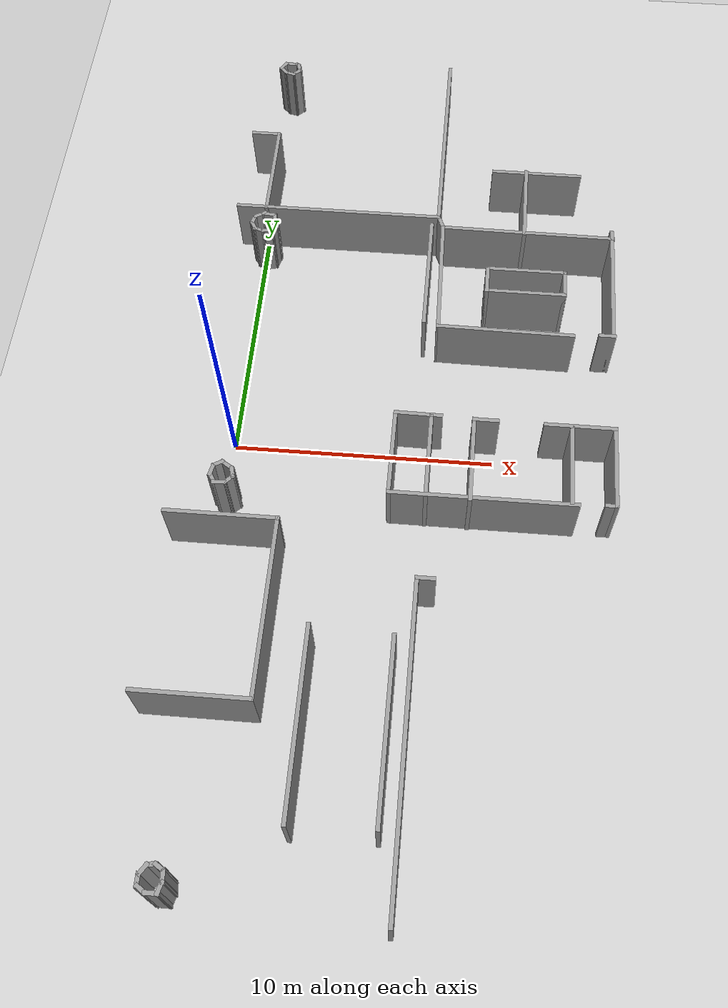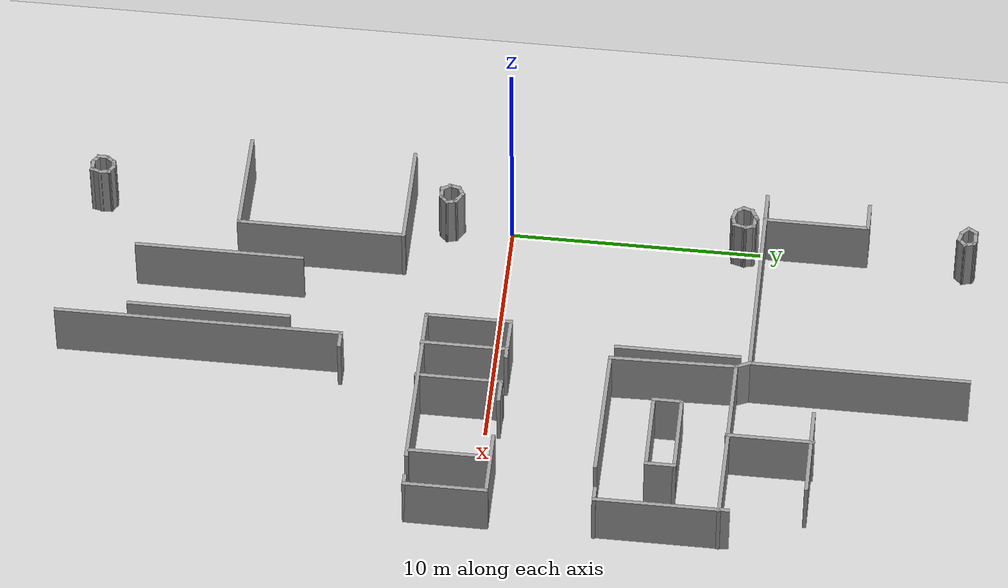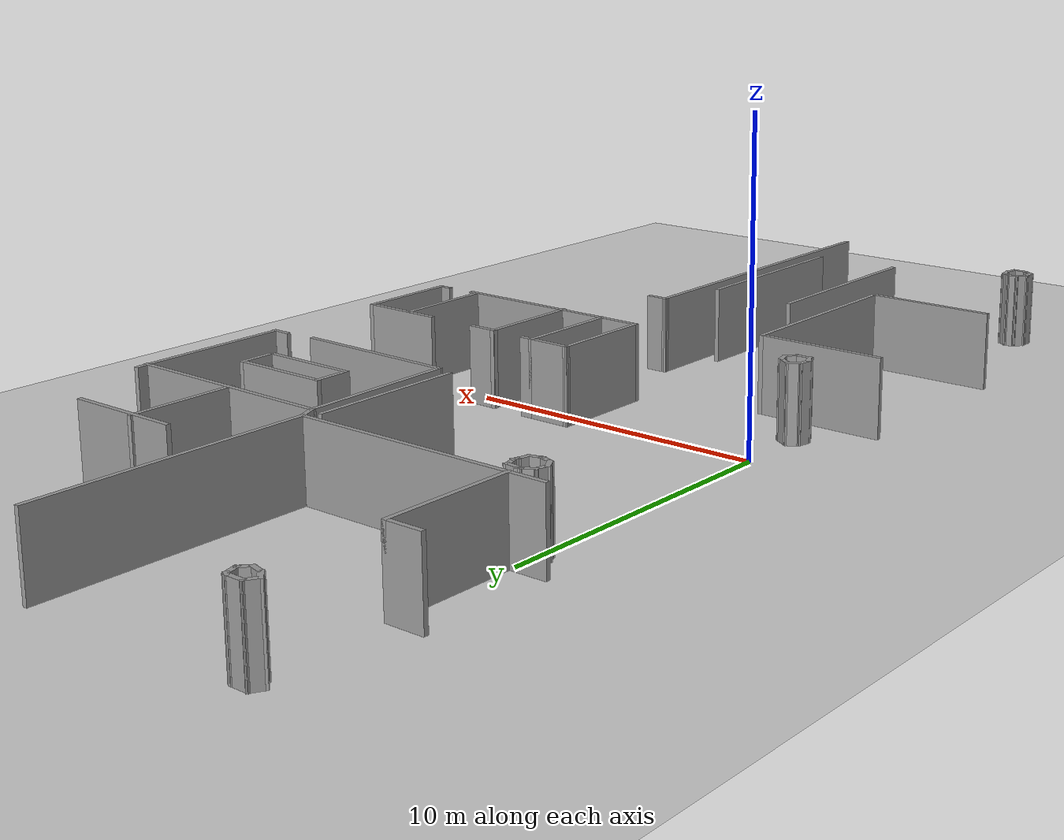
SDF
<sdf version="1.6">
 <world name="default">
  <model name="ground_plane">
   <static>1</static>
   <link name="link">
    <collision name="collision">
     <geometry><plane><normal>0 0 1</normal><size>100 100</size></plane></geometry>
     <surface>
      <contact><collide_bitmask>65535</collide_bitmask></contact>
      <friction><ode><mu>100</mu><mu2>50</mu2></ode></friction>
     </surface>
    </collision>
    <visual name="visual">
     <cast_shadows>0</cast_shadows>
     <geometry><plane><normal>0 0 1</normal><size>100 100</size></plane></geometry>
     <material>
      <script><uri>file://media/materials/scripts/gazebo.material</uri><name>Gazebo/Grey</name></script>
     </material>
    </visual>
   </link>
  </model>
  <model name="L8_1st">
   <pose>-0.728485 -0.360932 0 0 -0 0</pose>
   <link name="Wall_12">
    <collision name="Wall_12_Collision">
     <geometry><box><size>1.25 0.15 2.5</size></box></geometry>
     <pose>0 0 1.25 0 -0 0</pose>
    </collision>
    <visual name="Wall_12_Visual">
     <pose>0 0 1.25 0 -0 0</pose>
     <geometry><box><size>1.25 0.15 2.5</size></box></geometry>
     <material>
      <script><uri>file://media/materials/scripts/gazebo.material</uri><name>Gazebo/Grey</name></script>
      <ambient>1 1 1 1</ambient>
     </material>
     <meta><layer>0</layer></meta>
    </visual>
    <pose>0.254276 14.5952 0 0 -0 0</pose>
   </link>
   <link name="Wall_13">
    <collision name="Wall_13_Collision">
     <geometry><box><size>4.25 0.15 2.5</size></box></geometry>
     <pose>0 0 1.25 0 -0 0</pose>
    </collision>
    <visual name="Wall_13_Visual">
     <pose>0 0 1.25 0 -0 0</pose>
     <geometry><box><size>4.25 0.15 2.5</size></box></geometry>
     <material>
      <script><uri>file://media/materials/scripts/gazebo.material</uri><name>Gazebo/Grey</name></script>
      <ambient>1 1 1 1</ambient>
     </material>
     <meta><layer>0</layer></meta>
    </visual>
    <pose>0.804276 12.5452 0 0 -0 -1.5708</pose>
   </link>
   <link name="Wall_197">
    <collision name="Wall_197_Collision">
     <geometry><box><size>0.5 0.15 2.5</size></box></geometry>
     <pose>0 0 1.25 0 -0 0</pose>
    </collision>
    <visual name="Wall_197_Visual">
     <pose>0 0 1.25 0 -0 0</pose>
     <geometry><box><size>0.5 0.15 2.5</size></box></geometry>
     <material>
      <script><uri>file://media/materials/scripts/gazebo.material</uri><name>Gazebo/Grey</name></script>
      <ambient>1 1 1 1</ambient>
     </material>
     <meta><layer>0</layer></meta>
    </visual>
    <pose>0.650824 -1.70718 0 0 -0 -2.61799</pose>
   </link>
   <link name="Wall_198">
    <collision name="Wall_198_Collision">
     <geometry><box><size>0.528757 0.15 2.5</size></box></geometry>
     <pose>0 0 1.25 0 -0 0</pose>
    </collision>
    <visual name="Wall_198_Visual">
     <pose>0 0 1.25 0 -0 0</pose>
     <geometry><box><size>0.528757 0.15 2.5</size></box></geometry>
     <material>
      <script><uri>file://media/materials/scripts/gazebo.material</uri><name>Gazebo/Grey</name></script>
      <ambient>1 1 1 1</ambient>
     </material>
     <meta><layer>0</layer></meta>
    </visual>
    <pose>0.459042 -1.97974 0 0 -0 -1.78484</pose>
   </link>
   <link name="Wall_199">
    <collision name="Wall_199_Collision">
     <geometry><box><size>0.5 0.15 2.5</size></box></geometry>
     <pose>0 0 1.25 0 -0 0</pose>
    </collision>
    <visual name="Wall_199_Visual">
     <pose>0 0 1.25 0 -0 0</pose>
     <geometry><box><size>0.5 0.15 2.5</size></box></geometry>
     <material>
      <script><uri>file://media/materials/scripts/gazebo.material</uri><name>Gazebo/Grey</name></script>
      <ambient>1 1 1 1</ambient>
     </material>
     <meta><layer>0</layer></meta>
    </visual>
    <pose>0.526429 -2.31635 0 0 -0 -1.0472</pose>
   </link>
   <link name="Wall_200">
    <collision name="Wall_200_Collision">
     <geometry><box><size>0.580924 0.15 2.5</size></box></geometry>
     <pose>0 0 1.25 0 -0 0</pose>
    </collision>
    <visual name="Wall_200_Visual">
     <pose>0 0 1.25 0 -0 0</pose>
     <geometry><box><size>0.580924 0.15 2.5</size></box></geometry>
     <material>
      <script><uri>file://media/materials/scripts/gazebo.material</uri><name>Gazebo/Grey</name></script>
      <ambient>1 1 1 1</ambient>
     </material>
     <meta><layer>0</layer></meta>
    </visual>
    <pose>0.809042 -2.45785 0 0 -0 0.046692</pose>
   </link>
   <link name="Wall_201">
    <collision name="Wall_201_Collision">
     <geometry><box><size>0.5 0.15 2.5</size></box></geometry>
     <pose>0 0 1.25 0 -0 0</pose>
    </collision>
    <visual name="Wall_201_Visual">
     <pose>0 0 1.25 0 -0 0</pose>
     <geometry><box><size>0.5 0.15 2.5</size></box></geometry>
     <material>
      <script><uri>file://media/materials/scripts/gazebo.material</uri><name>Gazebo/Grey</name></script>
      <ambient>1 1 1 1</ambient>
     </material>
     <meta><layer>0</layer></meta>
    </visual>
    <pose>1.14801 -2.32405 0 0 -0 0.785398</pose>
   </link>
   <link name="Wall_202">
    <collision name="Wall_202_Collision">
     <geometry><box><size>0.5 0.15 2.5</size></box></geometry>
     <pose>0 0 1.25 0 -0 0</pose>
    </collision>
    <visual name="Wall_202_Visual">
     <pose>0 0 1.25 0 -0 0</pose>
     <geometry><box><size>0.5 0.15 2.5</size></box></geometry>
     <material>
      <script><uri>file://media/materials/scripts/gazebo.material</uri><name>Gazebo/Grey</name></script>
      <ambient>1 1 1 1</ambient>
     </material>
     <meta><layer>0</layer></meta>
    </visual>
    <pose>1.22646 -2.03127 0 0 -0 1.8326</pose>
   </link>
   <link name="Wall_203">
    <collision name="Wall_203_Collision">
     <geometry><box><size>0.599792 0.15 2.5</size></box></geometry>
     <pose>0 0 1.25 0 -0 0</pose>
    </collision>
    <visual name="Wall_203_Visual">
     <pose>0 0 1.25 0 -0 0</pose>
     <geometry><box><size>0.599792 0.15 2.5</size></box></geometry>
     <material>
      <script><uri>file://media/materials/scripts/gazebo.material</uri><name>Gazebo/Grey</name></script>
      <ambient>1 1 1 1</ambient>
     </material>
     <meta><layer>0</layer></meta>
    </visual>
    <pose>0.991774 -1.74096 0 0 -0 2.57205</pose>
   </link>
   <link name="Wall_223">
    <collision name="Wall_223_Collision">
     <geometry><box><size>0.494428 0.15 2.5</size></box></geometry>
     <pose>0 0 1.25 0 -0 0</pose>
    </collision>
    <visual name="Wall_223_Visual">
     <pose>0 0 1.25 0 -0 0</pose>
     <geometry><box><size>0.494428 0.15 2.5</size></box></geometry>
     <material>
      <script><uri>file://media/materials/scripts/gazebo.material</uri><name>Gazebo/Grey</name></script>
      <ambient>1 1 1 1</ambient>
     </material>
     <meta><layer>0</layer></meta>
    </visual>
    <pose>0.541837 -15.8586 0 0 -0 -2.16382</pose>
   </link>
   <link name="Wall_224">
    <collision name="Wall_224_Collision">
     <geometry><box><size>0.5 0.15 2.5</size></box></geometry>
     <pose>0 0 1.25 0 -0 0</pose>
    </collision>
    <visual name="Wall_224_Visual">
     <pose>0 0 1.25 0 -0 0</pose>
     <geometry><box><size>0.5 0.15 2.5</size></box></geometry>
     <material>
      <script><uri>file://media/materials/scripts/gazebo.material</uri><name>Gazebo/Grey</name></script>
      <ambient>1 1 1 1</ambient>
     </material>
     <meta><layer>0</layer></meta>
    </visual>
    <pose>0.428102 -16.1764 0 0 -0 -1.5708</pose>
   </link>
   <link name="Wall_225">
    <collision name="Wall_225_Collision">
     <geometry><box><size>0.470184 0.15 2.5</size></box></geometry>
     <pose>0 0 1.25 0 -0 0</pose>
    </collision>
    <visual name="Wall_225_Visual">
     <pose>0 0 1.25 0 -0 0</pose>
     <geometry><box><size>0.470184 0.15 2.5</size></box></geometry>
     <material>
      <script><uri>file://media/materials/scripts/gazebo.material</uri><name>Gazebo/Grey</name></script>
      <ambient>1 1 1 1</ambient>
     </material>
     <meta><layer>0</layer></meta>
    </visual>
    <pose>0.579656 -16.4389 0 0 -0 -0.578251</pose>
   </link>
   <link name="Wall_226">
    <collision name="Wall_226_Collision">
     <geometry><box><size>0.55247 0.15 2.5</size></box></geometry>
     <pose>0 0 1.25 0 -0 0</pose>
    </collision>
    <visual name="Wall_226_Visual">
     <pose>0 0 1.25 0 -0 0</pose>
     <geometry><box><size>0.55247 0.15 2.5</size></box></geometry>
     <material>
      <script><uri>file://media/materials/scripts/gazebo.material</uri><name>Gazebo/Grey</name></script>
      <ambient>1 1 1 1</ambient>
     </material>
     <meta><layer>0</layer></meta>
    </visual>
    <pose>0.914955 -16.5264 0 0 -0 0</pose>
   </link>
   <link name="Wall_227">
    <collision name="Wall_227_Collision">
     <geometry><box><size>0.5 0.15 2.5</size></box></geometry>
     <pose>0 0 1.25 0 -0 0</pose>
    </collision>
    <visual name="Wall_227_Visual">
     <pose>0 0 1.25 0 -0 0</pose>
     <geometry><box><size>0.5 0.15 2.5</size></box></geometry>
     <material>
      <script><uri>file://media/materials/scripts/gazebo.material</uri><name>Gazebo/Grey</name></script>
      <ambient>1 1 1 1</ambient>
     </material>
     <meta><layer>0</layer></meta>
    </visual>
    <pose>1.14399 -16.3573 0 0 -0 1.309</pose>
   </link>
   <link name="Wall_228">
    <collision name="Wall_228_Collision">
     <geometry><box><size>0.503911 0.15 2.5</size></box></geometry>
     <pose>0 0 1.25 0 -0 0</pose>
    </collision>
    <visual name="Wall_228_Visual">
     <pose>0 0 1.25 0 -0 0</pose>
     <geometry><box><size>0.503911 0.15 2.5</size></box></geometry>
     <material>
      <script><uri>file://media/materials/scripts/gazebo.material</uri><name>Gazebo/Grey</name></script>
      <ambient>1 1 1 1</ambient>
     </material>
     <meta><layer>0</layer></meta>
    </visual>
    <pose>1.18054 -16.0133 0 0 -0 1.7196</pose>
   </link>
   <link name="Wall_229">
    <collision name="Wall_229_Collision">
     <geometry><box><size>0.446022 0.15 2.5</size></box></geometry>
     <pose>0 0 1.25 0 -0 0</pose>
    </collision>
    <visual name="Wall_229_Visual">
     <pose>0 0 1.25 0 -0 0</pose>
     <geometry><box><size>0.446022 0.15 2.5</size></box></geometry>
     <material>
      <script><uri>file://media/materials/scripts/gazebo.material</uri><name>Gazebo/Grey</name></script>
      <ambient>1 1 1 1</ambient>
     </material>
     <meta><layer>0</layer></meta>
    </visual>
    <pose>1.02899 -15.7595 0 0 -0 2.58053</pose>
   </link>
   <link name="Wall_23">
    <collision name="Wall_23_Collision">
     <geometry><box><size>0.5 0.15 2.5</size></box></geometry>
     <pose>0 0 1.25 0 -0 0</pose>
    </collision>
    <visual name="Wall_23_Visual">
     <pose>0 0 1.25 0 -0 0</pose>
     <geometry><box><size>0.5 0.15 2.5</size></box></geometry>
     <material>
      <script><uri>file://media/materials/scripts/gazebo.material</uri><name>Gazebo/Grey</name></script>
      <ambient>1 1 1 1</ambient>
     </material>
     <meta><layer>0</layer></meta>
    </visual>
    <pose>0.487428 18.74 0 0 -0 -2.0944</pose>
   </link>
   <link name="Wall_230">
    <collision name="Wall_230_Collision">
     <geometry><box><size>0.417878 0.15 2.5</size></box></geometry>
     <pose>0 0 1.25 0 -0 0</pose>
    </collision>
    <visual name="Wall_230_Visual">
     <pose>0 0 1.25 0 -0 0</pose>
     <geometry><box><size>0.417878 0.15 2.5</size></box></geometry>
     <material>
      <script><uri>file://media/materials/scripts/gazebo.material</uri><name>Gazebo/Grey</name></script>
      <ambient>1 1 1 1</ambient>
     </material>
     <meta><layer>0</layer></meta>
    </visual>
    <pose>0.770875 -15.6983 0 0 -0 -3.01069</pose>
   </link>
   <link name="Wall_234">
    <collision name="Wall_234_Collision">
     <geometry><box><size>6.5 0.15 2.5</size></box></geometry>
     <pose>0 0 1.25 0 -0 0</pose>
    </collision>
    <visual name="Wall_234_Visual">
     <pose>0 0 1.25 0 -0 0</pose>
     <geometry><box><size>6.5 0.15 2.5</size></box></geometry>
     <material>
      <script><uri>file://media/materials/scripts/gazebo.material</uri><name>Gazebo/Grey</name></script>
      <ambient>1 1 1 1</ambient>
     </material>
     <meta><layer>0</layer></meta>
    </visual>
    <pose>7.60361 -10.9441 0 0 -0 -1.5708</pose>
   </link>
   <link name="Wall_236">
    <collision name="Wall_236_Collision">
     <geometry><box><size>6.75 0.15 2.5</size></box></geometry>
     <pose>0 0 1.25 0 -0 0</pose>
    </collision>
    <visual name="Wall_236_Visual">
     <pose>0 0 1.25 0 -0 0</pose>
     <geometry><box><size>6.75 0.15 2.5</size></box></geometry>
     <material>
      <script><uri>file://media/materials/scripts/gazebo.material</uri><name>Gazebo/Grey</name></script>
      <ambient>1 1 1 1</ambient>
     </material>
     <meta><layer>0</layer></meta>
    </visual>
    <pose>4.67025 -10.9115 0 0 -0 -1.5708</pose>
   </link>
   <link name="Wall_238">
    <collision name="Wall_238_Collision">
     <geometry><box><size>6.75 0.15 2.5</size></box></geometry>
     <pose>0 0 1.25 0 -0 0</pose>
    </collision>
    <visual name="Wall_238_Visual">
     <pose>0 0 1.25 0 -0 0</pose>
     <geometry><box><size>6.75 0.15 2.5</size></box></geometry>
     <material>
      <script><uri>file://media/materials/scripts/gazebo.material</uri><name>Gazebo/Grey</name></script>
      <ambient>1 1 1 1</ambient>
     </material>
     <meta><layer>0</layer></meta>
    </visual>
    <pose>3.10546 -7.03138 0 0 -0 1.5708</pose>
   </link>
   <link name="Wall_239">
    <collision name="Wall_239_Collision">
     <geometry><box><size>4.25 0.15 2.5</size></box></geometry>
     <pose>0 0 1.25 0 -0 0</pose>
    </collision>
    <visual name="Wall_239_Visual">
     <pose>0 0 1.25 0 -0 0</pose>
     <geometry><box><size>4.25 0.15 2.5</size></box></geometry>
     <material>
      <script><uri>file://media/materials/scripts/gazebo.material</uri><name>Gazebo/Grey</name></script>
      <ambient>1 1 1 1</ambient>
     </material>
     <meta><layer>0</layer></meta>
    </visual>
    <pose>1.05546 -3.73138 0 0 -0 3.14159</pose>
   </link>
   <link name="Wall_24">
    <collision name="Wall_24_Collision">
     <geometry><box><size>0.5 0.15 2.5</size></box></geometry>
     <pose>0 0 1.25 0 -0 0</pose>
    </collision>
    <visual name="Wall_24_Visual">
     <pose>0 0 1.25 0 -0 0</pose>
     <geometry><box><size>0.5 0.15 2.5</size></box></geometry>
     <material>
      <script><uri>file://media/materials/scripts/gazebo.material</uri><name>Gazebo/Grey</name></script>
      <ambient>1 1 1 1</ambient>
     </material>
     <meta><layer>0</layer></meta>
    </visual>
    <pose>0.523672 18.4647 0 0 -0 -0.785398</pose>
   </link>
   <link name="Wall_241">
    <collision name="Wall_241_Collision">
     <geometry><box><size>4.25 0.15 2.5</size></box></geometry>
     <pose>0 0 1.25 0 -0 0</pose>
    </collision>
    <visual name="Wall_241_Visual">
     <pose>0 0 1.25 0 -0 0</pose>
     <geometry><box><size>4.25 0.15 2.5</size></box></geometry>
     <material>
      <script><uri>file://media/materials/scripts/gazebo.material</uri><name>Gazebo/Grey</name></script>
      <ambient>1 1 1 1</ambient>
     </material>
     <meta><layer>0</layer></meta>
    </visual>
    <pose>1.05546 -10.3314 0 0 -0 0</pose>
   </link>
   <link name="Wall_25">
    <collision name="Wall_25_Collision">
     <geometry><box><size>0.5 0.15 2.5</size></box></geometry>
     <pose>0 0 1.25 0 -0 0</pose>
    </collision>
    <visual name="Wall_25_Visual">
     <pose>0 0 1.25 0 -0 0</pose>
     <geometry><box><size>0.5 0.15 2.5</size></box></geometry>
     <material>
      <script><uri>file://media/materials/scripts/gazebo.material</uri><name>Gazebo/Grey</name></script>
      <ambient>1 1 1 1</ambient>
     </material>
     <meta><layer>0</layer></meta>
    </visual>
    <pose>0.816452 18.2957 0 0 -0 -0.261799</pose>
   </link>
   <link name="Wall_253">
    <collision name="Wall_253_Collision">
     <geometry><box><size>5 0.15 2.5</size></box></geometry>
     <pose>0 0 1.25 0 -0 0</pose>
    </collision>
    <visual name="Wall_253_Visual">
     <pose>0 0 1.25 0 -0 0</pose>
     <geometry><box><size>5 0.15 2.5</size></box></geometry>
     <material>
      <script><uri>file://media/materials/scripts/gazebo.material</uri><name>Gazebo/Grey</name></script>
      <ambient>1 1 1 1</ambient>
     </material>
     <meta><layer>0</layer></meta>
    </visual>
    <pose>7.72886 7.64604 0 0 -0 -1.5708</pose>
   </link>
   <link name="Wall_26">
    <collision name="Wall_26_Collision">
     <geometry><box><size>0.5 0.15 2.5</size></box></geometry>
     <pose>0 0 1.25 0 -0 0</pose>
    </collision>
    <visual name="Wall_26_Visual">
     <pose>0 0 1.25 0 -0 0</pose>
     <geometry><box><size>0.5 0.15 2.5</size></box></geometry>
     <material>
      <script><uri>file://media/materials/scripts/gazebo.material</uri><name>Gazebo/Grey</name></script>
      <ambient>1 1 1 1</ambient>
     </material>
     <meta><layer>0</layer></meta>
    </visual>
    <pose>1.10923 18.3741 0 0 -0 0.785398</pose>
   </link>
   <link name="Wall_264">
    <collision name="Wall_264_Collision">
     <geometry><box><size>0.25 0.15 2.5</size></box></geometry>
     <pose>0 0 1.25 0 -0 0</pose>
    </collision>
    <visual name="Wall_264_Visual">
     <pose>0 0 1.25 0 -0 0</pose>
     <geometry><box><size>0.25 0.15 2.5</size></box></geometry>
     <material>
      <script><uri>file://media/materials/scripts/gazebo.material</uri><name>Gazebo/Grey</name></script>
      <ambient>1 1 1 1</ambient>
     </material>
     <meta><layer>0</layer></meta>
    </visual>
    <pose>0.75794 10.1494 0 0 -0 -2.61799</pose>
   </link>
   <link name="Wall_265">
    <collision name="Wall_265_Collision">
     <geometry><box><size>0.5 0.15 2.5</size></box></geometry>
     <pose>0 0 1.25 0 -0 0</pose>
    </collision>
    <visual name="Wall_265_Visual">
     <pose>0 0 1.25 0 -0 0</pose>
     <geometry><box><size>0.5 0.15 2.5</size></box></geometry>
     <material>
      <script><uri>file://media/materials/scripts/gazebo.material</uri><name>Gazebo/Grey</name></script>
      <ambient>1 1 1 1</ambient>
     </material>
     <meta><layer>0</layer></meta>
    </visual>
    <pose>0.563084 10.0369 0 0 -0 -2.61799</pose>
   </link>
   <link name="Wall_266">
    <collision name="Wall_266_Collision">
     <geometry><box><size>0.5 0.15 2.5</size></box></geometry>
     <pose>0 0 1.25 0 -0 0</pose>
    </collision>
    <visual name="Wall_266_Visual">
     <pose>0 0 1.25 0 -0 0</pose>
     <geometry><box><size>0.5 0.15 2.5</size></box></geometry>
     <material>
      <script><uri>file://media/materials/scripts/gazebo.material</uri><name>Gazebo/Grey</name></script>
      <ambient>1 1 1 1</ambient>
     </material>
     <meta><layer>0</layer></meta>
    </visual>
    <pose>0.366237 9.78036 0 0 -0 -1.8326</pose>
   </link>
   <link name="Wall_267">
    <collision name="Wall_267_Collision">
     <geometry><box><size>0.5 0.15 2.5</size></box></geometry>
     <pose>0 0 1.25 0 -0 0</pose>
    </collision>
    <visual name="Wall_267_Visual">
     <pose>0 0 1.25 0 -0 0</pose>
     <geometry><box><size>0.5 0.15 2.5</size></box></geometry>
     <material>
      <script><uri>file://media/materials/scripts/gazebo.material</uri><name>Gazebo/Grey</name></script>
      <ambient>1 1 1 1</ambient>
     </material>
     <meta><layer>0</layer></meta>
    </visual>
    <pose>0.408443 9.45977 0 0 -0 -1.0472</pose>
   </link>
   <link name="Wall_268">
    <collision name="Wall_268_Collision">
     <geometry><box><size>0.5 0.15 2.5</size></box></geometry>
     <pose>0 0 1.25 0 -0 0</pose>
    </collision>
    <visual name="Wall_268_Visual">
     <pose>0 0 1.25 0 -0 0</pose>
     <geometry><box><size>0.5 0.15 2.5</size></box></geometry>
     <material>
      <script><uri>file://media/materials/scripts/gazebo.material</uri><name>Gazebo/Grey</name></script>
      <ambient>1 1 1 1</ambient>
     </material>
     <meta><layer>0</layer></meta>
    </visual>
    <pose>0.66498 9.26292 0 0 -0 -0.261799</pose>
   </link>
   <link name="Wall_269">
    <collision name="Wall_269_Collision">
     <geometry><box><size>0.5 0.15 2.5</size></box></geometry>
     <pose>0 0 1.25 0 -0 0</pose>
    </collision>
    <visual name="Wall_269_Visual">
     <pose>0 0 1.25 0 -0 0</pose>
     <geometry><box><size>0.5 0.15 2.5</size></box></geometry>
     <material>
      <script><uri>file://media/materials/scripts/gazebo.material</uri><name>Gazebo/Grey</name></script>
      <ambient>1 1 1 1</ambient>
     </material>
     <meta><layer>0</layer></meta>
    </visual>
    <pose>1.00305 9.26292 0 0 -0 0.261799</pose>
   </link>
   <link name="Wall_27">
    <collision name="Wall_27_Collision">
     <geometry><box><size>0.5 0.15 2.5</size></box></geometry>
     <pose>0 0 1.25 0 -0 0</pose>
    </collision>
    <visual name="Wall_27_Visual">
     <pose>0 0 1.25 0 -0 0</pose>
     <geometry><box><size>0.5 0.15 2.5</size></box></geometry>
     <material>
      <script><uri>file://media/materials/scripts/gazebo.material</uri><name>Gazebo/Grey</name></script>
      <ambient>1 1 1 1</ambient>
     </material>
     <meta><layer>0</layer></meta>
    </visual>
    <pose>1.18768 18.6669 0 0 -0 1.8326</pose>
   </link>
   <link name="Wall_270">
    <collision name="Wall_270_Collision">
     <geometry><box><size>0.5 0.15 2.5</size></box></geometry>
     <pose>0 0 1.25 0 -0 0</pose>
    </collision>
    <visual name="Wall_270_Visual">
     <pose>0 0 1.25 0 -0 0</pose>
     <geometry><box><size>0.5 0.15 2.5</size></box></geometry>
     <material>
      <script><uri>file://media/materials/scripts/gazebo.material</uri><name>Gazebo/Grey</name></script>
      <ambient>1 1 1 1</ambient>
     </material>
     <meta><layer>0</layer></meta>
    </visual>
    <pose>1.21738 9.47725 0 0 -0 1.309</pose>
   </link>
   <link name="Wall_271">
    <collision name="Wall_271_Collision">
     <geometry><box><size>0.25284 0.15 2.5</size></box></geometry>
     <pose>0 0 1.25 0 -0 0</pose>
    </collision>
    <visual name="Wall_271_Visual">
     <pose>0 0 1.25 0 -0 0</pose>
     <geometry><box><size>0.25284 0.15 2.5</size></box></geometry>
     <material>
      <script><uri>file://media/materials/scripts/gazebo.material</uri><name>Gazebo/Grey</name></script>
      <ambient>1 1 1 1</ambient>
     </material>
     <meta><layer>0</layer></meta>
    </visual>
    <pose>1.28033 9.69459 0 0 -0 1.22043</pose>
   </link>
   <link name="Wall_272">
    <collision name="Wall_272_Collision">
     <geometry><box><size>0.5 0.15 2.5</size></box></geometry>
     <pose>0 0 1.25 0 -0 0</pose>
    </collision>
    <visual name="Wall_272_Visual">
     <pose>0 0 1.25 0 -0 0</pose>
     <geometry><box><size>0.5 0.15 2.5</size></box></geometry>
     <material>
      <script><uri>file://media/materials/scripts/gazebo.material</uri><name>Gazebo/Grey</name></script>
      <ambient>1 1 1 1</ambient>
     </material>
     <meta><layer>0</layer></meta>
    </visual>
    <pose>1.23739 9.91192 0 0 -0 1.8326</pose>
   </link>
   <link name="Wall_273">
    <collision name="Wall_273_Collision">
     <geometry><box><size>0.644662 0.15 2.5</size></box></geometry>
     <pose>0 0 1.25 0 -0 0</pose>
    </collision>
    <visual name="Wall_273_Visual">
     <pose>0 0 1.25 0 -0 0</pose>
     <geometry><box><size>0.644662 0.15 2.5</size></box></geometry>
     <material>
      <script><uri>file://media/materials/scripts/gazebo.material</uri><name>Gazebo/Grey</name></script>
      <ambient>1 1 1 1</ambient>
     </material>
     <meta><layer>0</layer></meta>
    </visual>
    <pose>0.961014 10.1027 0 0 -0 3.05366</pose>
   </link>
   <link name="Wall_275">
    <collision name="Wall_275_Collision">
     <geometry><box><size>0.711572 0.15 2.5</size></box></geometry>
     <pose>0 0 1.25 0 -0 0</pose>
    </collision>
    <visual name="Wall_275_Visual">
     <pose>0 0 1.25 0 -0 0</pose>
     <geometry><box><size>0.711572 0.15 2.5</size></box></geometry>
     <material>
      <script><uri>file://media/materials/scripts/gazebo.material</uri><name>Gazebo/Grey</name></script>
      <ambient>1 1 1 1</ambient>
     </material>
     <meta><layer>0</layer></meta>
    </visual>
    <pose>8.09272 10.2435 0 0 -0 -1.1744</pose>
   </link>
   <link name="Wall_276">
    <collision name="Wall_276_Collision">
     <geometry><box><size>7.12333 0.15 2.5</size></box></geometry>
     <pose>0 0 1.25 0 -0 0</pose>
    </collision>
    <visual name="Wall_276_Visual">
     <pose>0 0 1.25 0 -0 0</pose>
     <geometry><box><size>7.12333 0.15 2.5</size></box></geometry>
     <material>
      <script><uri>file://media/materials/scripts/gazebo.material</uri><name>Gazebo/Grey</name></script>
      <ambient>1 1 1 1</ambient>
     </material>
     <meta><layer>0</layer></meta>
    </visual>
    <pose>11.6877 9.95377 0 0 -0 -0.008823</pose>
   </link>
   <link name="Wall_277">
    <collision name="Wall_277_Collision">
     <geometry><box><size>5 0.15 2.5</size></box></geometry>
     <pose>0 0 1.25 0 -0 0</pose>
    </collision>
    <visual name="Wall_277_Visual">
     <pose>0 0 1.25 0 -0 0</pose>
     <geometry><box><size>5 0.15 2.5</size></box></geometry>
     <material>
      <script><uri>file://media/materials/scripts/gazebo.material</uri><name>Gazebo/Grey</name></script>
      <ambient>1 1 1 1</ambient>
     </material>
     <meta><layer>0</layer></meta>
    </visual>
    <pose>15.1434 7.49801 0 0 -0 -1.5708</pose>
   </link>
   <link name="Wall_278">
    <collision name="Wall_278_Collision">
     <geometry><box><size>0.684584 0.15 2.5</size></box></geometry>
     <pose>0 0 1.25 0 -0 0</pose>
    </collision>
    <visual name="Wall_278_Visual">
     <pose>0 0 1.25 0 -0 0</pose>
     <geometry><box><size>0.684584 0.15 2.5</size></box></geometry>
     <material>
      <script><uri>file://media/materials/scripts/gazebo.material</uri><name>Gazebo/Grey</name></script>
      <ambient>1 1 1 1</ambient>
     </material>
     <meta><layer>0</layer></meta>
    </visual>
    <pose>14.9069 5.07301 0 0 -0 3.14159</pose>
   </link>
   <link name="Wall_28">
    <collision name="Wall_28_Collision">
     <geometry><box><size>0.25 0.15 2.5</size></box></geometry>
     <pose>0 0 1.25 0 -0 0</pose>
    </collision>
    <visual name="Wall_28_Visual">
     <pose>0 0 1.25 0 -0 0</pose>
     <geometry><box><size>0.25 0.15 2.5</size></box></geometry>
     <material>
      <script><uri>file://media/materials/scripts/gazebo.material</uri><name>Gazebo/Grey</name></script>
      <ambient>1 1 1 1</ambient>
     </material>
     <meta><layer>0</layer></meta>
    </visual>
    <pose>1.09909 18.8609 0 0 -0 2.61799</pose>
   </link>
   <link name="Wall_280">
    <collision name="Wall_280_Collision">
     <geometry><box><size>5.09704 0.15 2.5</size></box></geometry>
     <pose>0 0 1.25 0 -0 0</pose>
    </collision>
    <visual name="Wall_280_Visual">
     <pose>0 0 1.25 0 -0 0</pose>
     <geometry><box><size>5.09704 0.15 2.5</size></box></geometry>
     <material>
      <script><uri>file://media/materials/scripts/gazebo.material</uri><name>Gazebo/Grey</name></script>
      <ambient>1 1 1 1</ambient>
     </material>
     <meta><layer>0</layer></meta>
    </visual>
    <pose>8.24728 7.51145 0 0 -0 -1.55214</pose>
   </link>
   <link name="Wall_281">
    <collision name="Wall_281_Collision">
     <geometry><box><size>5.43883 0.15 2.5</size></box></geometry>
     <pose>0 0 1.25 0 -0 0</pose>
    </collision>
    <visual name="Wall_281_Visual">
     <pose>0 0 1.25 0 -0 0</pose>
     <geometry><box><size>5.43883 0.15 2.5</size></box></geometry>
     <material>
      <script><uri>file://media/materials/scripts/gazebo.material</uri><name>Gazebo/Grey</name></script>
      <ambient>1 1 1 1</ambient>
     </material>
     <meta><layer>0</layer></meta>
    </visual>
    <pose>10.9377 5.00759 0 0 -0 -0.011634</pose>
   </link>
   <link name="Wall_283">
    <collision name="Wall_283_Collision">
     <geometry><box><size>0.499503 0.15 2.5</size></box></geometry>
     <pose>0 0 1.25 0 -0 0</pose>
    </collision>
    <visual name="Wall_283_Visual">
     <pose>0 0 1.25 0 -0 0</pose>
     <geometry><box><size>0.499503 0.15 2.5</size></box></geometry>
     <material>
      <script><uri>file://media/materials/scripts/gazebo.material</uri><name>Gazebo/Grey</name></script>
      <ambient>1 1 1 1</ambient>
     </material>
     <meta><layer>0</layer></meta>
    </visual>
    <pose>15.1355 10.0976 0 0 -0 -1.52519</pose>
   </link>
   <link name="Wall_29">
    <collision name="Wall_29_Collision">
     <geometry><box><size>0.630892 0.15 2.5</size></box></geometry>
     <pose>0 0 1.25 0 -0 0</pose>
    </collision>
    <visual name="Wall_29_Visual">
     <pose>0 0 1.25 0 -0 0</pose>
     <geometry><box><size>0.630892 0.15 2.5</size></box></geometry>
     <material>
      <script><uri>file://media/materials/scripts/gazebo.material</uri><name>Gazebo/Grey</name></script>
      <ambient>1 1 1 1</ambient>
     </material>
     <meta><layer>0</layer></meta>
    </visual>
    <pose>0.815358 18.8887 0 0 -0 3.1299</pose>
   </link>
   <link name="Wall_366">
    <collision name="Wall_366_Collision">
     <geometry><box><size>2.75 0.15 2.5</size></box></geometry>
     <pose>0 0 1.25 0 -0 0</pose>
    </collision>
    <visual name="Wall_366_Visual">
     <pose>0 0 1.25 0 -0 0</pose>
     <geometry><box><size>2.75 0.15 2.5</size></box></geometry>
     <material>
      <script><uri>file://media/materials/scripts/gazebo.material</uri><name>Gazebo/Grey</name></script>
      <ambient>1 1 1 1</ambient>
     </material>
     <meta><layer>0</layer></meta>
    </visual>
    <pose>13.8799 0.892282 0 0 -0 0</pose>
   </link>
   <link name="Wall_367">
    <collision name="Wall_367_Collision">
     <geometry><box><size>3.35614 0.15 2.5</size></box></geometry>
     <pose>0 0 1.25 0 -0 0</pose>
    </collision>
    <visual name="Wall_367_Visual">
     <pose>0 0 1.25 0 -0 0</pose>
     <geometry><box><size>3.35614 0.15 2.5</size></box></geometry>
     <material>
      <script><uri>file://media/materials/scripts/gazebo.material</uri><name>Gazebo/Grey</name></script>
      <ambient>1 1 1 1</ambient>
     </material>
     <meta><layer>0</layer></meta>
    </visual>
    <pose>15.1799 -0.710786 0 0 -0 -1.5708</pose>
   </link>
   <link name="Wall_368">
    <collision name="Wall_368_Collision">
     <geometry><box><size>0.5 0.15 2.5</size></box></geometry>
     <pose>0 0 1.25 0 -0 0</pose>
    </collision>
    <visual name="Wall_368_Visual">
     <pose>0 0 1.25 0 -0 0</pose>
     <geometry><box><size>0.5 0.15 2.5</size></box></geometry>
     <material>
      <script><uri>file://media/materials/scripts/gazebo.material</uri><name>Gazebo/Grey</name></script>
      <ambient>1 1 1 1</ambient>
     </material>
     <meta><layer>0</layer></meta>
    </visual>
    <pose>15.0049 -2.31385 0 0 -0 3.14159</pose>
   </link>
   <link name="Wall_370">
    <collision name="Wall_370_Collision">
     <geometry><box><size>7 0.15 2.5</size></box></geometry>
     <pose>0 0 1.25 0 -0 0</pose>
    </collision>
    <visual name="Wall_370_Visual">
     <pose>0 0 1.25 0 -0 0</pose>
     <geometry><box><size>7 0.15 2.5</size></box></geometry>
     <material>
      <script><uri>file://media/materials/scripts/gazebo.material</uri><name>Gazebo/Grey</name></script>
      <ambient>1 1 1 1</ambient>
     </material>
     <meta><layer>0</layer></meta>
    </visual>
    <pose>10.377 -2.36924 0 0 -0 3.14159</pose>
   </link>
   <link name="Wall_371">
    <collision name="Wall_371_Collision">
     <geometry><box><size>3.5 0.15 2.5</size></box></geometry>
     <pose>0 0 1.25 0 -0 0</pose>
    </collision>
    <visual name="Wall_371_Visual">
     <pose>0 0 1.25 0 -0 0</pose>
     <geometry><box><size>3.5 0.15 2.5</size></box></geometry>
     <material>
      <script><uri>file://media/materials/scripts/gazebo.material</uri><name>Gazebo/Grey</name></script>
      <ambient>1 1 1 1</ambient>
     </material>
     <meta><layer>0</layer></meta>
    </visual>
    <pose>6.95204 -0.694235 0 0 -0 1.5708</pose>
   </link>
   <link name="Wall_372">
    <collision name="Wall_372_Collision">
     <geometry><box><size>1.48478 0.15 2.5</size></box></geometry>
     <pose>0 0 1.25 0 -0 0</pose>
    </collision>
    <visual name="Wall_372_Visual">
     <pose>0 0 1.25 0 -0 0</pose>
     <geometry><box><size>1.48478 0.15 2.5</size></box></geometry>
     <material>
      <script><uri>file://media/materials/scripts/gazebo.material</uri><name>Gazebo/Grey</name></script>
      <ambient>1 1 1 1</ambient>
     </material>
     <meta><layer>0</layer></meta>
    </visual>
    <pose>7.61937 0.97192 0 0 -0 -0.013253</pose>
   </link>
   <link name="Wall_374">
    <collision name="Wall_374_Collision">
     <geometry><box><size>1.02004 0.15 2.5</size></box></geometry>
     <pose>0 0 1.25 0 -0 0</pose>
    </collision>
    <visual name="Wall_374_Visual">
     <pose>0 0 1.25 0 -0 0</pose>
     <geometry><box><size>1.02004 0.15 2.5</size></box></geometry>
     <material>
      <script><uri>file://media/materials/scripts/gazebo.material</uri><name>Gazebo/Grey</name></script>
      <ambient>1 1 1 1</ambient>
     </material>
     <meta><layer>0</layer></meta>
    </visual>
    <pose>10.3454 0.903279 0 0 -0 0</pose>
   </link>
   <link name="Wall_376">
    <collision name="Wall_376_Collision">
     <geometry><box><size>3.5 0.15 2.5</size></box></geometry>
     <pose>0 0 1.25 0 -0 0</pose>
    </collision>
    <visual name="Wall_376_Visual">
     <pose>0 0 1.25 0 -0 0</pose>
     <geometry><box><size>3.5 0.15 2.5</size></box></geometry>
     <material>
      <script><uri>file://media/materials/scripts/gazebo.material</uri><name>Gazebo/Grey</name></script>
      <ambient>1 1 1 1</ambient>
     </material>
     <meta><layer>0</layer></meta>
    </visual>
    <pose>9.91041 -0.754032 0 0 -0 -1.5708</pose>
   </link>
   <link name="Wall_378">
    <collision name="Wall_378_Collision">
     <geometry><box><size>3.25 0.15 2.5</size></box></geometry>
     <pose>0 0 1.25 0 -0 0</pose>
    </collision>
    <visual name="Wall_378_Visual">
     <pose>0 0 1.25 0 -0 0</pose>
     <geometry><box><size>3.25 0.15 2.5</size></box></geometry>
     <material>
      <script><uri>file://media/materials/scripts/gazebo.material</uri><name>Gazebo/Grey</name></script>
      <ambient>1 1 1 1</ambient>
     </material>
     <meta><layer>0</layer></meta>
    </visual>
    <pose>13.5721 -0.735168 0 0 -0 -1.5708</pose>
   </link>
   <link name="Wall_380">
    <collision name="Wall_380_Collision">
     <geometry><box><size>3.5 0.15 2.5</size></box></geometry>
     <pose>0 0 1.25 0 -0 0</pose>
    </collision>
    <visual name="Wall_380_Visual">
     <pose>0 0 1.25 0 -0 0</pose>
     <geometry><box><size>3.5 0.15 2.5</size></box></geometry>
     <material>
      <script><uri>file://media/materials/scripts/gazebo.material</uri><name>Gazebo/Grey</name></script>
      <ambient>1 1 1 1</ambient>
     </material>
     <meta><layer>0</layer></meta>
    </visual>
    <pose>8.30439 -0.711924 0 0 -0 -1.5708</pose>
   </link>
   <link name="Wall_382">
    <collision name="Wall_382_Collision">
     <geometry><box><size>0.5 0.15 2.5</size></box></geometry>
     <pose>0 0 1.25 0 -0 0</pose>
    </collision>
    <visual name="Wall_382_Visual">
     <pose>0 0 1.25 0 -0 0</pose>
     <geometry><box><size>0.5 0.15 2.5</size></box></geometry>
     <material>
      <script><uri>file://media/materials/scripts/gazebo.material</uri><name>Gazebo/Grey</name></script>
      <ambient>1 1 1 1</ambient>
     </material>
     <meta><layer>0</layer></meta>
    </visual>
    <pose>8.47939 0.963076 0 0 -0 3.14159</pose>
   </link>
   <link name="Wall_392">
    <collision name="Wall_392_Collision">
     <geometry><box><size>3.75 0.15 2.5</size></box></geometry>
     <pose>0 0 1.25 0 -0 0</pose>
    </collision>
    <visual name="Wall_392_Visual">
     <pose>0 0 1.25 0 -0 0</pose>
     <geometry><box><size>3.75 0.15 2.5</size></box></geometry>
     <material>
      <script><uri>file://media/materials/scripts/gazebo.material</uri><name>Gazebo/Grey</name></script>
      <ambient>1 1 1 1</ambient>
     </material>
     <meta><layer>0</layer></meta>
    </visual>
    <pose>11.989 13.1933 0 0 -0 0</pose>
   </link>
   <link name="Wall_394">
    <collision name="Wall_394_Collision">
     <geometry><box><size>3.5 0.15 2.5</size></box></geometry>
     <pose>0 0 1.25 0 -0 0</pose>
    </collision>
    <visual name="Wall_394_Visual">
     <pose>0 0 1.25 0 -0 0</pose>
     <geometry><box><size>3.5 0.15 2.5</size></box></geometry>
     <material>
      <script><uri>file://media/materials/scripts/gazebo.material</uri><name>Gazebo/Grey</name></script>
      <ambient>1 1 1 1</ambient>
     </material>
     <meta><layer>0</layer></meta>
    </visual>
    <pose>11.5487 11.5899 0 0 -0 -1.5708</pose>
   </link>
   <link name="Wall_396">
    <collision name="Wall_396_Collision">
     <geometry><box><size>11.4593 0.15 2.5</size></box></geometry>
     <pose>0 0 1.25 0 -0 0</pose>
    </collision>
    <visual name="Wall_396_Visual">
     <pose>0 0 1.25 0 -0 0</pose>
     <geometry><box><size>11.4593 0.15 2.5</size></box></geometry>
     <material>
      <script><uri>file://media/materials/scripts/gazebo.material</uri><name>Gazebo/Grey</name></script>
      <ambient>1 1 1 1</ambient>
     </material>
     <meta><layer>0</layer></meta>
    </visual>
    <pose>8.22628 -11.2695 0 0 -0 1.57259</pose>
   </link>
   <link name="Wall_397">
    <collision name="Wall_397_Collision">
     <geometry><box><size>0.75 0.15 2.5</size></box></geometry>
     <pose>0 0 1.25 0 -0 0</pose>
    </collision>
    <visual name="Wall_397_Visual">
     <pose>0 0 1.25 0 -0 0</pose>
     <geometry><box><size>0.75 0.15 2.5</size></box></geometry>
     <material>
      <script><uri>file://media/materials/scripts/gazebo.material</uri><name>Gazebo/Grey</name></script>
      <ambient>1 1 1 1</ambient>
     </material>
     <meta><layer>0</layer></meta>
    </visual>
    <pose>8.51611 -5.61485 0 0 -0 0</pose>
   </link>
   <link name="Wall_421">
    <collision name="Wall_421_Collision">
     <geometry><box><size>1.25 0.15 2.5</size></box></geometry>
     <pose>0 0 1.25 0 -0 0</pose>
    </collision>
    <visual name="Wall_421_Visual">
     <pose>0 0 1.25 0 -0 0</pose>
     <geometry><box><size>1.25 0.15 2.5</size></box></geometry>
     <material>
      <script><uri>file://media/materials/scripts/gazebo.material</uri><name>Gazebo/Grey</name></script>
      <ambient>1 1 1 1</ambient>
     </material>
     <meta><layer>0</layer></meta>
    </visual>
    <pose>10.1272 7.46615 0 0 -0 -1.5708</pose>
   </link>
   <link name="Wall_422">
    <collision name="Wall_422_Collision">
     <geometry><box><size>3.25 0.15 2.5</size></box></geometry>
     <pose>0 0 1.25 0 -0 0</pose>
    </collision>
    <visual name="Wall_422_Visual">
     <pose>0 0 1.25 0 -0 0</pose>
     <geometry><box><size>3.25 0.15 2.5</size></box></geometry>
     <material>
      <script><uri>file://media/materials/scripts/gazebo.material</uri><name>Gazebo/Grey</name></script>
      <ambient>1 1 1 1</ambient>
     </material>
     <meta><layer>0</layer></meta>
    </visual>
    <pose>11.6772 6.91615 0 0 -0 0</pose>
   </link>
   <link name="Wall_423">
    <collision name="Wall_423_Collision">
     <geometry><box><size>1.25 0.15 2.5</size></box></geometry>
     <pose>0 0 1.25 0 -0 0</pose>
    </collision>
    <visual name="Wall_423_Visual">
     <pose>0 0 1.25 0 -0 0</pose>
     <geometry><box><size>1.25 0.15 2.5</size></box></geometry>
     <material>
      <script><uri>file://media/materials/scripts/gazebo.material</uri><name>Gazebo/Grey</name></script>
      <ambient>1 1 1 1</ambient>
     </material>
     <meta><layer>0</layer></meta>
    </visual>
    <pose>13.2272 7.46615 0 0 -0 1.5708</pose>
   </link>
   <link name="Wall_424">
    <collision name="Wall_424_Collision">
     <geometry><box><size>3.25 0.15 2.5</size></box></geometry>
     <pose>0 0 1.25 0 -0 0</pose>
    </collision>
    <visual name="Wall_424_Visual">
     <pose>0 0 1.25 0 -0 0</pose>
     <geometry><box><size>3.25 0.15 2.5</size></box></geometry>
     <material>
      <script><uri>file://media/materials/scripts/gazebo.material</uri><name>Gazebo/Grey</name></script>
      <ambient>1 1 1 1</ambient>
     </material>
     <meta><layer>0</layer></meta>
    </visual>
    <pose>11.6772 8.01615 0 0 -0 3.14159</pose>
   </link>
   <link name="Wall_6">
    <collision name="Wall_6_Collision">
     <geometry><box><size>8.5 0.15 2.5</size></box></geometry>
     <pose>0 0 1.25 0 -0 0</pose>
    </collision>
    <visual name="Wall_6_Visual">
     <pose>0 0 1.25 0 -0 0</pose>
     <geometry><box><size>8.5 0.15 2.5</size></box></geometry>
     <material>
      <script><uri>file://media/materials/scripts/gazebo.material</uri><name>Gazebo/Grey</name></script>
      <ambient>1 1 1 1</ambient>
     </material>
     <meta><layer>0</layer></meta>
    </visual>
    <pose>3.80932 10.5026 0 0 -0 0</pose>
   </link>
   <link name="Wall_7">
    <collision name="Wall_7_Collision">
     <geometry><box><size>8.75 0.15 2.5</size></box></geometry>
     <pose>0 0 1.25 0 -0 0</pose>
    </collision>
    <visual name="Wall_7_Visual">
     <pose>0 0 1.25 0 -0 0</pose>
     <geometry><box><size>8.75 0.15 2.5</size></box></geometry>
     <material>
      <script><uri>file://media/materials/scripts/gazebo.material</uri><name>Gazebo/Grey</name></script>
      <ambient>1 1 1 1</ambient>
     </material>
     <meta><layer>0</layer></meta>
    </visual>
    <pose>7.98431 14.8026 0 0 -0 1.5708</pose>
   </link>
   <static>1</static>
  </model>
 </world>
</sdf>
